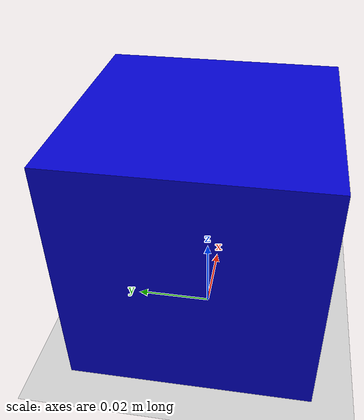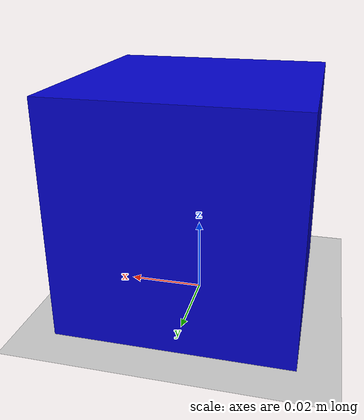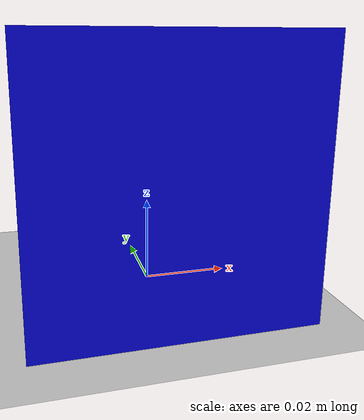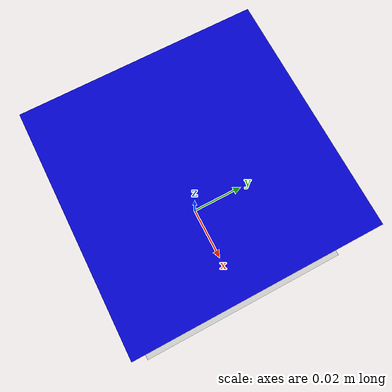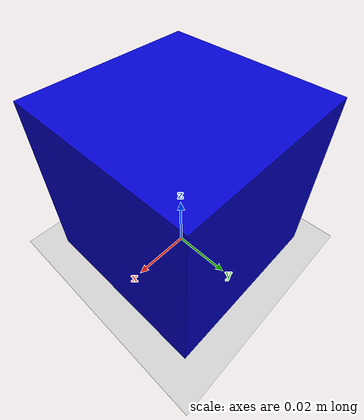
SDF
<?xml version="1.0"?>
<sdf version="1.4">
  <world name="default">
    <include>
      <uri>model://ground_plane</uri>
    </include>
    <include>
      <uri>model://sun</uri>
    </include>
    <model name="rectangle_1">
      <pose>0 0 0  0 0 0</pose>
      <static>false</static>
      <link name="body">
        <visual name="visual">
          <geometry>
            <mesh><uri>file://rectungle.dae</uri></mesh>
          </geometry>
        </visual>
      </link>
    </model>
  </world>
</sdf>
